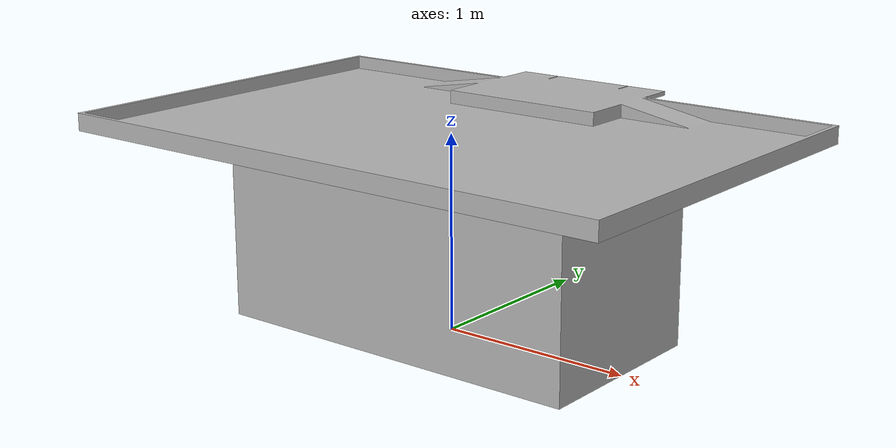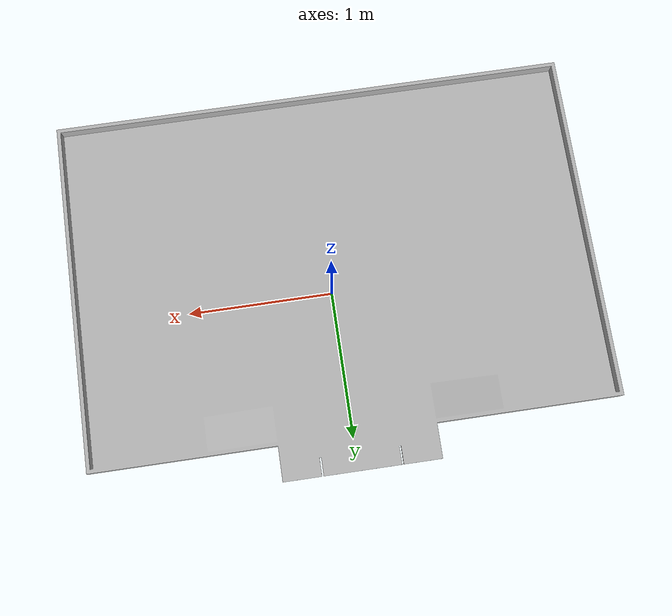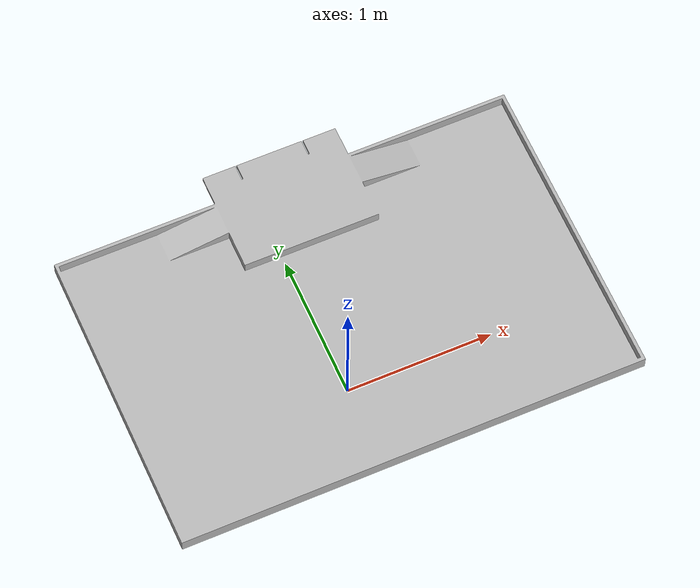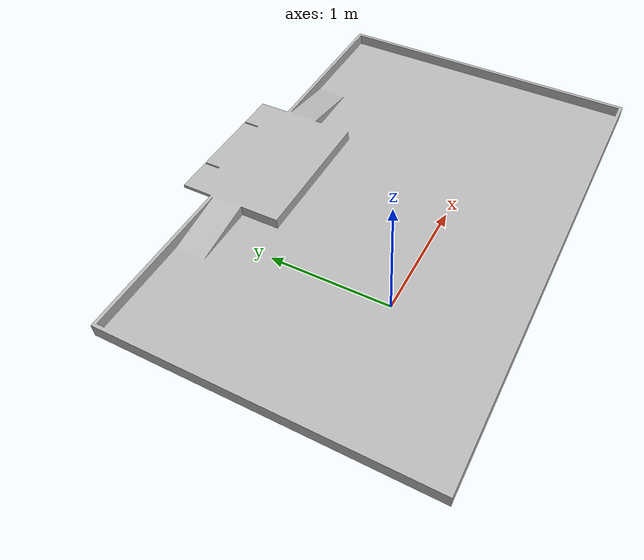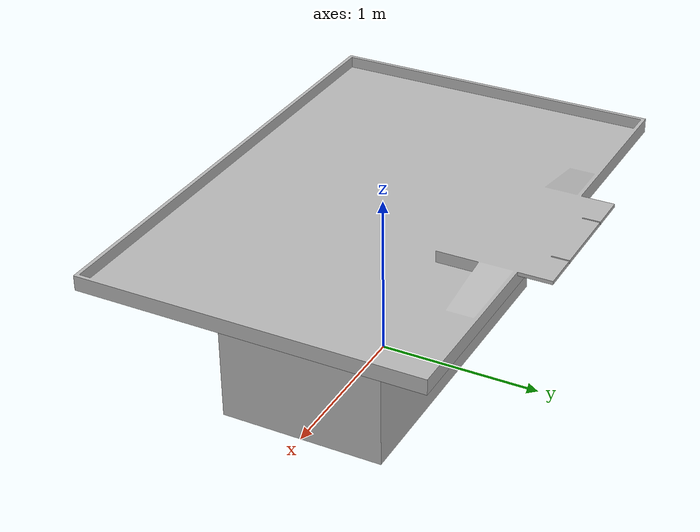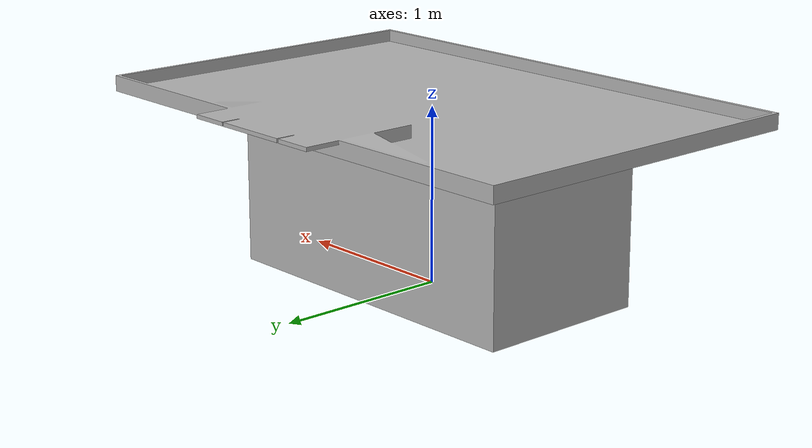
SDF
<?xml version='1.0'?>
<sdf version='1.7'>
  <model name='Table_2024'>
   	<static>true</static>
    <plugin filename="gz-sim-label-system" name="gz::sim::systems::Label">
        <label>1</label>
    </plugin>
    <link name='link_0'>
			<gravity>0</gravity>
      <inertial>
        <inertia>
          <ixx>0.166667</ixx>
          <ixy>0</ixy>
          <ixz>0</ixz>
          <iyy>0.166667</iyy>
          <iyz>0</iyz>
          <izz>0.166667</izz>
        </inertia>
      </inertial>
      <pose>0 0 0 0 0 0</pose>
      <visual name='visual'>
        <pose>0 0 0 0 -0 0</pose>
        <geometry>
          <mesh>
            <uri>model://eurobot_arena_2025/meshes/eurobot_arena_2025.dae</uri>
            <scale>1 1 1</scale>
          </mesh>
        </geometry>
        <transparency>0</transparency>
        <cast_shadows>1</cast_shadows>
      </visual>
      <collision name='collision'>
        <laser_retro>0</laser_retro>
        <max_contacts>10</max_contacts>
        <pose>0 0 0 0 -0 0</pose>
        <geometry>
          <mesh>
            <uri>model://eurobot_arena_2025/meshes/eurobot_arena_2025.dae</uri>
            <scale>1 1 1</scale>
          </mesh>
        </geometry>
        <surface>
          <friction>
            <ode>
              <mu>1</mu>
              <mu2>1</mu2>
              <fdir1>0 0 0</fdir1>
              <slip1>0</slip1>
              <slip2>0</slip2>
            </ode>
            <torsional>
              <coefficient>1</coefficient>
              <patch_radius>0</patch_radius>
              <surface_radius>0</surface_radius>
              <use_patch_radius>1</use_patch_radius>
              <ode>
                <slip>0</slip>
              </ode>
            </torsional>
          </friction>

          <contact>
            <collide_without_contact>0</collide_without_contact>
            <collide_without_contact_bitmask>1</collide_without_contact_bitmask>
            <collide_bitmask>1</collide_bitmask>
            <ode>
              <soft_cfm>0</soft_cfm>
              <soft_erp>0.2</soft_erp>
              <kp>1e+13</kp>
              <kd>1</kd>
              <max_vel>0.01</max_vel>
              <min_depth>0.01</min_depth>
            </ode>
            <bullet>
              <split_impulse>1</split_impulse>
              <split_impulse_penetration_threshold>-0.01</split_impulse_penetration_threshold>
              <soft_cfm>0</soft_cfm>
              <soft_erp>0.2</soft_erp>
              <kp>1e+13</kp>
              <kd>1</kd>
            </bullet>
          </contact>
        </surface>
      </collision>

       <collision name="table_stand_collision">
        <pose>0 0 0.489 0 0 0</pose>
        <geometry>
          <box>
            <size>2 1 0.978</size>
          </box>
        </geometry>
      </collision>

      <visual name="table_stand_visual">
        <pose>0 0 0.489 0 0 0</pose>
        <geometry>
          <box>
            <size>2 1 0.978</size>
          </box>
        </geometry>
      </visual>

    </link>
    <pose>0 0 0 0 0 0</pose>

    <static>0</static>
    <allow_auto_disable>1</allow_auto_disable>
  </model>
</sdf>
